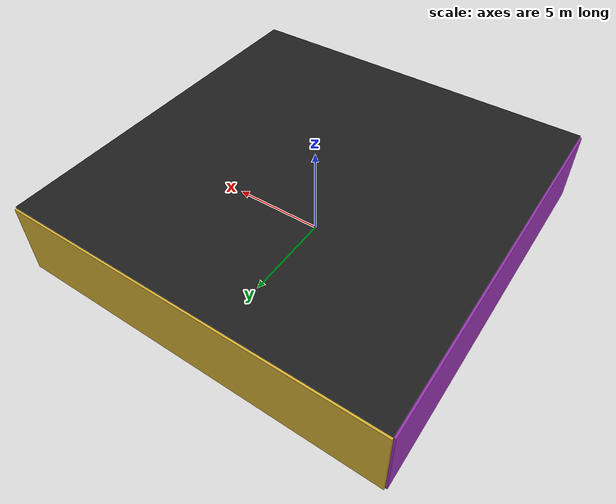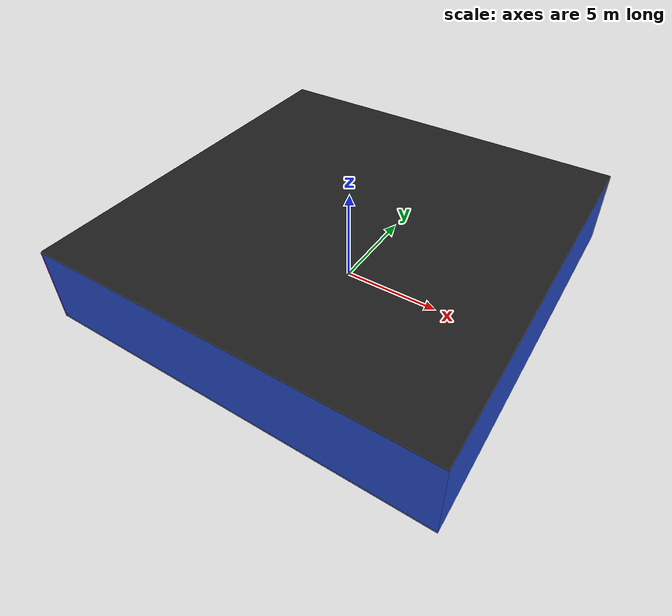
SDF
<sdf version="1.4">
 <world name="default">
  <physics type="ode">
   <max_step_size>0.001</max_step_size>
   <real_time_factor>1</real_time_factor>
   <real_time_update_rate>1000</real_time_update_rate>
   <gravity>0 0 -9.8</gravity>
  </physics>
  <scene><ambient>0.4 0.4 0.4 1</ambient><background>0.7 0.7 0.7 1</background><shadows>1</shadows></scene>
  <model name="Surrounding">
   <static>1</static>
   <link name="Ceiling">
    <collision name="Ceiling_Collision"><geometry><box><size>20 20 0.1</size></box></geometry></collision>
    <visual name="Ceiling_Visual">
     <geometry><box><size>20 20 0.1</size></box></geometry>
     <material>
      <script><uri>file://media/materials/scripts/gazebo.material</uri><name>Gazebo/Black</name></script>
     </material>
    </visual>
    <pose>0 0 4.05 0 0 0</pose>
   </link>
   <link name="Wall_South">
    <collision name="Wall_South_Collision">
     <geometry><box><size>20 0 4</size></box></geometry>
     <pose>0 0 2 0 -0 0</pose>
    </collision>
    <visual name="Wall_South_Visual">
     <pose>0 0 2 0 -0 0</pose>
     <geometry><box><size>20 0 4</size></box></geometry>
     <material>
      <script><uri>file://media/materials/scripts/gazebo.material</uri><name>Gazebo/Blue</name></script>
     </material>
    </visual>
    <velocity_decay><linear>0</linear><angular>0</angular></velocity_decay>
    <pose>0 -10 0 0 -0 0</pose>
   </link>
   <link name="Wall_East">
    <collision name="Wall_21_Collision">
     <geometry><box><size>20 0 4</size></box></geometry>
     <pose>0 0 2 0 -0 0</pose>
    </collision>
    <visual name="Wall_21_Visual">
     <pose>0 0 2 0 -0 0</pose>
     <geometry><box><size>20 0 4</size></box></geometry>
     <material>
      <script><uri>file://media/materials/scripts/gazebo.material</uri><name>Gazebo/Blue</name></script>
     </material>
    </visual>
    <velocity_decay><linear>0</linear><angular>0</angular></velocity_decay>
    <pose>10 0 0 0 -0 1.5708</pose>
   </link>
   <link name="Wall_North">
    <collision name="Wall_22_Collision">
     <geometry><box><size>20 0.2 4</size></box></geometry>
     <pose>0 0 2 0 -0 0</pose>
    </collision>
    <visual name="Wall_22_Visual">
     <pose>0 0 2 0 -0 0</pose>
     <geometry><box><size>20 0.2 4</size></box></geometry>
     <material>
      <script><uri>file://media/materials/scripts/gazebo.material</uri><name>Gazebo/Gold</name></script>
     </material>
    </visual>
    <velocity_decay><linear>0</linear><angular>0</angular></velocity_decay>
    <pose>0 10 0 0 -0 0</pose>
   </link>
   <link name="Wall_West">
    <collision name="Wall_23_Collision">
     <geometry><box><size>20 0.2 4</size></box></geometry>
     <pose>0 0 2 0 -0 0</pose>
    </collision>
    <visual name="Wall_23_Visual">
     <pose>0 0 2 0 -0 0</pose>
     <geometry><box><size>20 0.2 4</size></box></geometry>
     <material>
      <script><uri>file://media/materials/scripts/gazebo.material</uri><name>Gazebo/Purple</name></script>
     </material>
    </visual>
    <velocity_decay><linear>0</linear><angular>0</angular></velocity_decay>
    <pose>-10 0 0 0 0 -1.5708</pose>
   </link>
   <link name="Ground_link">
    <collision name="collision">
     <pose>0 0 .05 0 -0 0</pose>
     <geometry><box><size>20 20 0.1</size></box></geometry>
    </collision>
    <visual name="visual">
     <pose>0 0 .05 0 -0 0</pose>
     <geometry><box><size>20 20 0.1</size></box></geometry>
     <material>
      <script><uri>file://media/materials/scripts/gazebo.material</uri><name>Gazebo/GreyTransparent</name></script>
     </material>
    </visual>
   </link>
   <static>1</static>
  </model>
  <spherical_coordinates>
   <surface_model>EARTH_WGS84</surface_model>
   <latitude_deg>0</latitude_deg>
   <longitude_deg>0</longitude_deg>
   <elevation>0</elevation>
   <heading_deg>0</heading_deg>
  </spherical_coordinates>
  <light name="lightball_0" type="diffuse">
   <diffuse>0.8 0.8 0.8 1</diffuse>
   <specular>0.2 0.2 0.2 1</specular>
   <attenuation>
    <range>100</range>
    <constant>0.7</constant>
    <linear>0.01</linear>
    <quadratic>0.001</quadratic>
   </attenuation>
   <direction>-0.5 0.1 -0.9</direction>
   <pose>4.16021197129 -9.32647563634 3.72589294317 0 0 0</pose>
  </light>
  <light name="lightball_1" type="diffuse">
   <diffuse>0.8 0.8 0.8 1</diffuse>
   <specular>0.2 0.2 0.2 1</specular>
   <attenuation>
    <range>100</range>
    <constant>0.7</constant>
    <linear>0.01</linear>
    <quadratic>0.001</quadratic>
   </attenuation>
   <direction>-0.5 0.1 -0.9</direction>
   <pose>5.13663001653 7.1962884268 0.808128331787 0 0 0</pose>
  </light>
  <include>
   <uri>model://construction_cone</uri>
   <pose>-6.86238578653 4.92673146419 0 0 0 1.7599105365</pose>
  </include>
  <include><uri>model://cabinet</uri><pose>-4.18384714691 1.27127207933 0 0 0 2.69194737769</pose></include>
  <include><uri>model://cabinet</uri><pose>-1.33061218 4.58933357598 0 0 0 1.27148053083</pose></include>
  <include><uri>model://cabinet</uri><pose>4.05593015783 0.914264981688 0 0 0 2.27297420306</pose></include>
  <include>
   <uri>model://construction_cone</uri>
   <pose>8.13386162164 -7.67649852788 0 0 0 0.734969278177</pose>
  </include>
 </world>
</sdf>

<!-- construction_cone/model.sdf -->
<sdf version="1.5">
  <model name="Construction Cone">
    <link name="link">
      <collision name="collision">
        <geometry>
          <mesh>
            <scale>10 10 10</scale>
            <uri>file://isr-testbed/construction_cone/meshes/construction_cone.dae</uri>
          </mesh>
        </geometry>
      </collision>
      <visual name="visual">
        <geometry>
          <mesh>
            <scale>10 10 10</scale>
            <uri>file://isr-testbed/construction_cone/meshes/construction_cone.dae</uri>
          </mesh>
        </geometry>
      </visual>
    </link>
  </model>
</sdf>

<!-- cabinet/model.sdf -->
<sdf version="1.5">
  <model name="cabinet">
    <static>true</static>
    <link name="cabinet_bottom_plate">
      <inertial>
        <pose>0 0 -1 0 0 0</pose>
        <inertia>
          <ixx>2.050000</ixx>
          <ixy>0</ixy>
          <ixz>0</ixz>
          <iyy>2.050000</iyy>
          <iyz>0</iyz>
          <izz>2.050000</izz>
        </inertia>
        <mass>25.000000</mass>
      </inertial>
      <collision name="cabinet_bottom_plate_geom">
        <pose>0 0 0.010000 0 0 0</pose>
        <geometry>
          <box>
            <size>0.450000 0.450000 0.020000</size>
          </box>
        </geometry>
      </collision>
      <visual name="cabinet_bottom_plate_geom_visual">
        <pose>0 0 0.010000 0 0 0</pose>
        <geometry>
          <box>
            <size>0.450000 0.450000 0.020000</size>
          </box>
        </geometry>
        <material>
          <script>
            <uri>model://media/materials/scripts/gazebo.material</uri>
            <name>Gazebo/Wood</name>
          </script>
        </material>
      </visual>
      <collision name="cabinet_bottom_plate_geom_cabinet_back_plate">
        <pose>0.235000 0 0.510000 0 0 0</pose>
        <geometry>
          <box>
            <size>0.020000 0.450000 1.020000</size>
          </box>
        </geometry>
      </collision>
      <visual name="cabinet_bottom_plate_geom_cabinet_back_plate_visual">
        <pose>0.235000 0 0.510000 0 0 0</pose>
        <geometry>
          <box>
            <size>0.020000 0.450000 1.020000</size>
          </box>
        </geometry>
        <material>
          <script>
            <uri>model://media/materials/scripts/gazebo.material</uri>
            <name>Gazebo/Wood</name>
          </script>
        </material>
      </visual>
      <collision name="cabinet_bottom_plate_geom_cabinet_left_plate">
        <pose>0 0.235000 0.510000 0 0 0</pose>
        <geometry>
          <box>
            <size>0.450000 0.020000 1.020000</size>
          </box>
        </geometry>
      </collision>
      <visual name="cabinet_bottom_plate_geom_cabinet_left_plate_visual">
        <pose>0 0.235000 0.510000 0 0 0</pose>
        <geometry>
          <box>
            <size>0.450000 0.020000 1.020000</size>
          </box>
        </geometry>
        <material>
          <script>
            <uri>model://media/materials/scripts/gazebo.material</uri>
            <name>Gazebo/Wood</name>
          </script>
        </material>
      </visual>
      <collision name="cabinet_bottom_plate_geom_cabinet_middle_plate">
        <pose>0 0 0.510000 0 0 0</pose>
        <geometry>
          <box>
            <size>0.450000 0.450000 0.020000</size>
          </box>
        </geometry>
      </collision>
      <visual name="cabinet_bottom_plate_geom_cabinet_middle_plate_visual">
        <pose>0 0 0.510000 0 0 0</pose>
        <geometry>
          <box>
            <size>0.450000 0.450000 0.020000</size>
          </box>
        </geometry>
        <material>
          <script>
            <uri>model://media/materials/scripts/gazebo.material</uri>
            <name>Gazebo/Wood</name>
          </script>
        </material>
      </visual>
      <collision name="cabinet_bottom_plate_geom_cabinet_right_plate">
        <pose>0 -0.235000 0.510000 0 0 0</pose>
        <geometry>
          <box>
            <size>0.450000 0.020000 1.020000</size>
          </box>
        </geometry>
      </collision>
      <visual name="cabinet_bottom_plate_geom_cabinet_right_plate_visual">
        <pose>0 -0.235000 0.510000 0 0 0</pose>
        <geometry>
          <box>
            <size>0.450000 0.020000 1.020000</size>
          </box>
        </geometry>
        <material>
          <script>
            <uri>model://media/materials/scripts/gazebo.material</uri>
            <name>Gazebo/Wood</name>
          </script>
        </material>
      </visual>
      <collision name="cabinet_bottom_plate_geom_cabinet_top_plate">
        <pose>0 0 1.010000 0 0 0</pose>
        <geometry>
          <box>
            <size>0.450000 0.450000 0.020000</size>
          </box>
        </geometry>
      </collision>
      <visual name="cabinet_bottom_plate_geom_cabinet_top_plate_visual">
        <pose>0 0 1.010000 0 0 0</pose>
        <geometry>
          <box>
            <size>0.450000 0.450000 0.020000</size>
          </box>
        </geometry>
        <material>
          <script>
            <uri>model://media/materials/scripts/gazebo.material</uri>
            <name>Gazebo/Wood</name>
          </script>
        </material>
      </visual>
    </link>
  </model>
</sdf>
